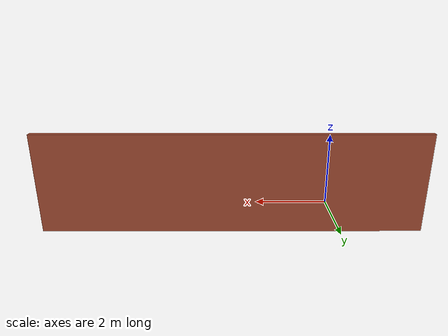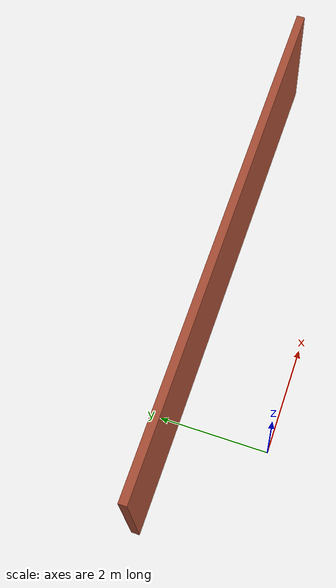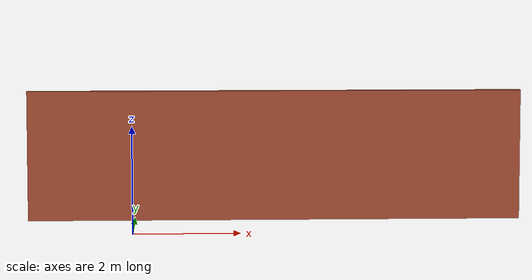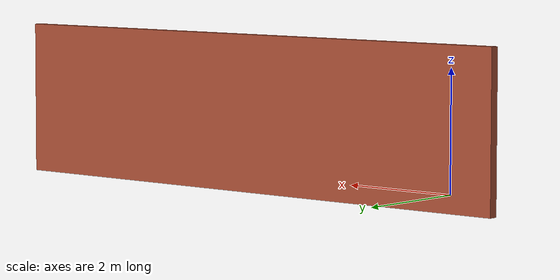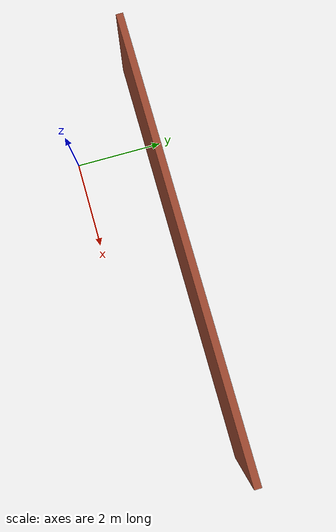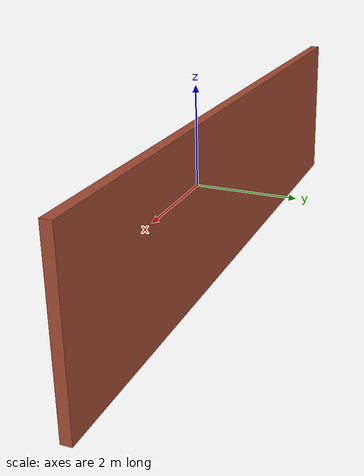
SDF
<?xml version='1.0'?>
<sdf version='1.6'>
  <model name='simple_wall'>
    <pose frame=''>2.69947 1.73427 0 0 -0 0</pose>
    <link name='Wall_0'>
      <collision name='Wall_0_Collision'>
        <geometry>
          <box>
            <size>9.5 0.15 2.5</size>
          </box>
        </geometry>
        <pose frame=''>0 0 1.25 0 -0 0</pose>
      </collision>
      <visual name='Wall_0_Visual'>
        <pose frame=''>0 0 1.25 0 -0 0</pose>
        <geometry>
          <box>
            <size>9.5 0.15 2.5</size>
          </box>
        </geometry>
        <material>
          <script>
            <uri>file://media/materials/scripts/gazebo.material</uri>
            <name>Gazebo/Bricks</name>
          </script>
          <ambient>1 1 1 1</ambient>
        </material>
        <meta>
          <layer>0</layer>
        </meta>
      </visual>
      <pose frame=''>0 0 0 0 -0 3.14159</pose>
    </link>
    <static>1</static>
  </model>
</sdf>
